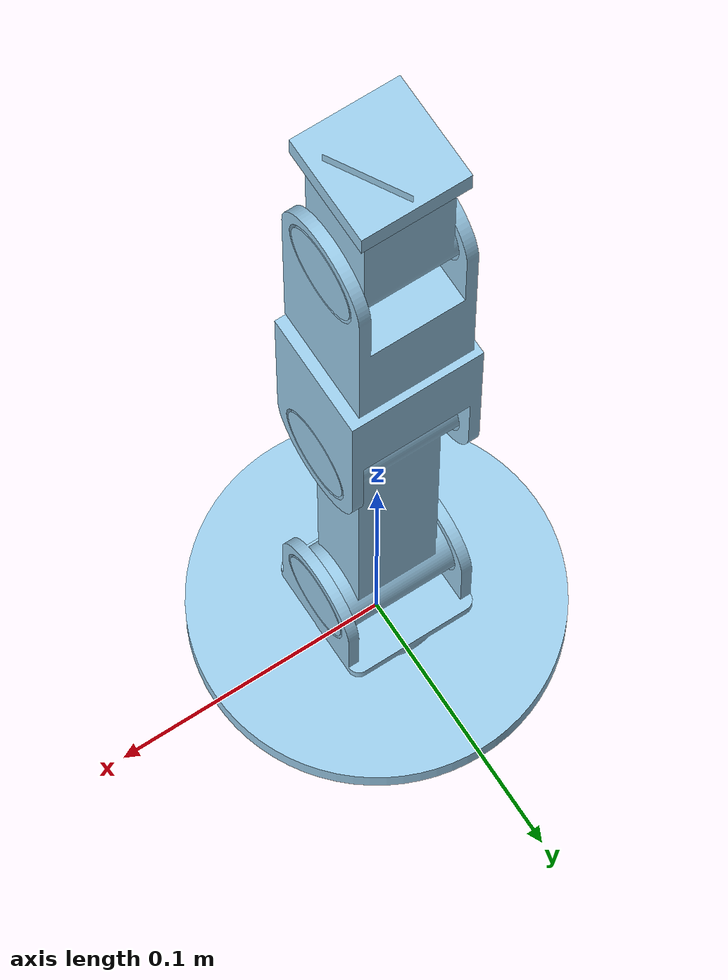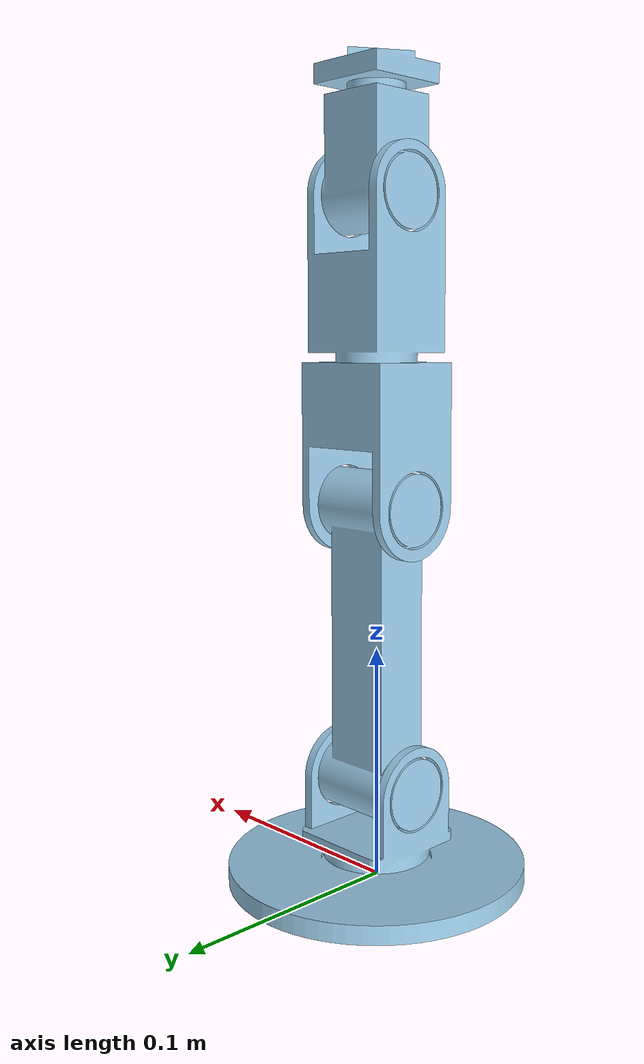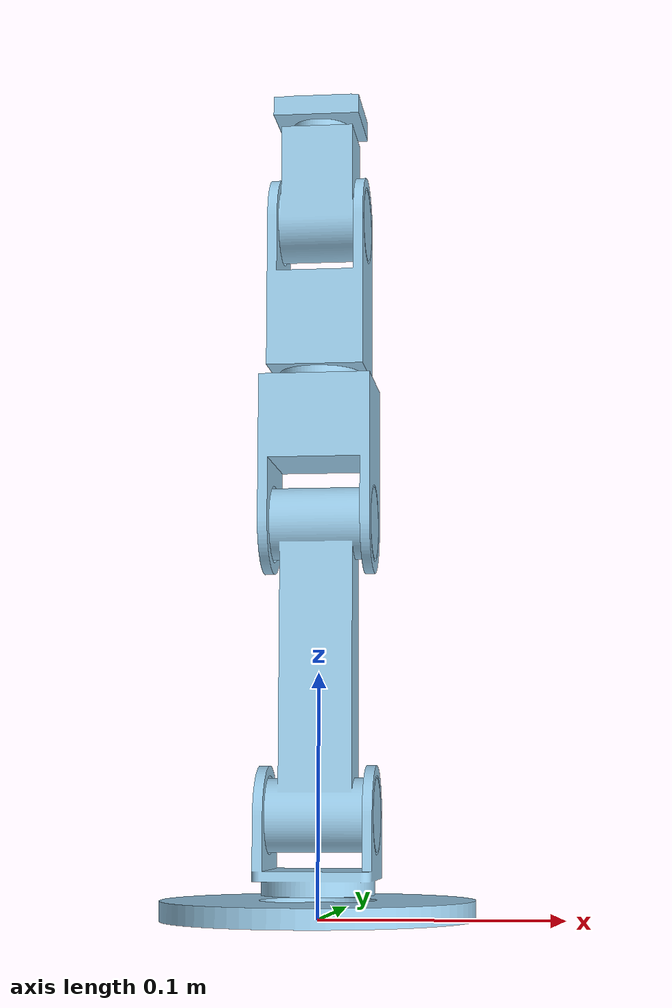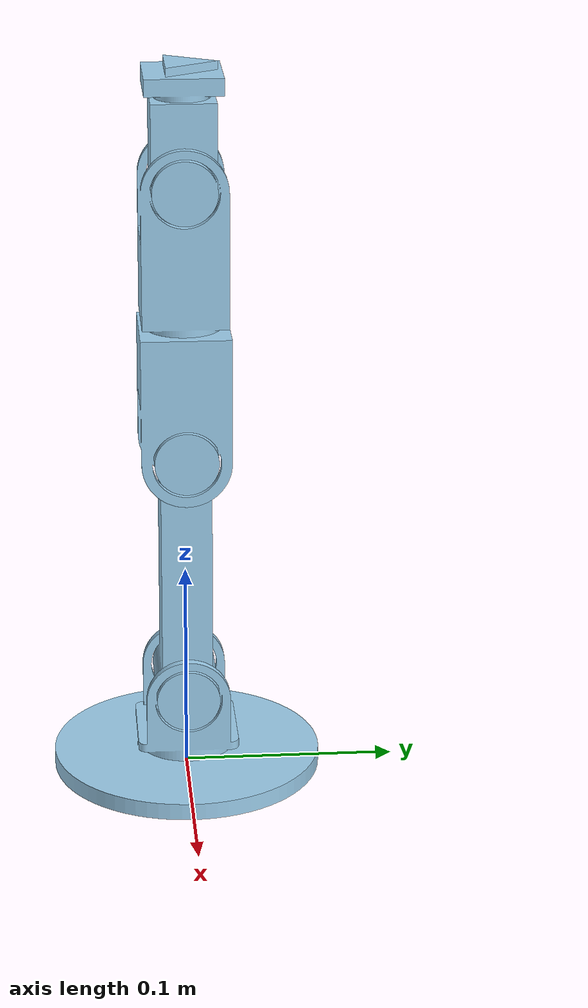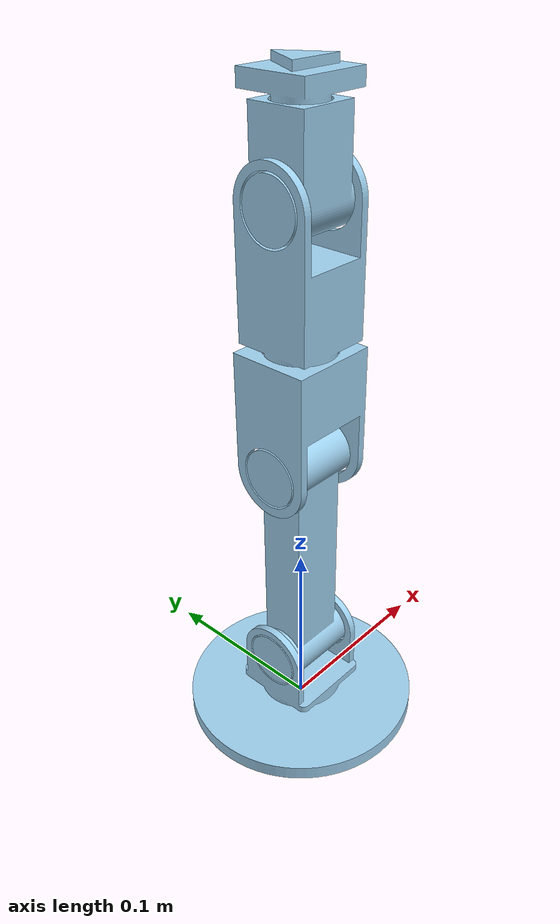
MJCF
<?xml version="1.0" ?>
<!-- Generated using onshape-to-robot -->
<!-- Onshape https://cad.onshape.com/documents/d7eef6374aced10980d655e0/w/a95c1ea2fcec3b2e30db9b5b/e/37748f464a77cfd6b037d346 -->
<mujoco model="6dof-gen">
  <compiler angle="radian" meshdir="assets" autolimits="true"/>
  <default>
    <default class="6dof-gen">
      <joint frictionloss="0.1" armature="0.005"/>
      <position kp="50" dampratio="1"/>
      <default class="visual">
        <geom type="mesh" contype="0" conaffinity="0" group="2"/>
      </default>
      <default class="collision">
        <geom group="3"/>
      </default>
    </default>
  </default>
  <worldbody>
    <!-- Link base -->
    <body name="base" pos="0 0 0" quat="1 0 0 0" childclass="6dof-gen">
      <inertial pos="0 0 0.00389069" mass="0.124156" fullinertia="0.000131759 0.000131759 0.000262233 0 0 0"/>
      <!-- Part base -->
      <geom type="mesh" class="visual" pos="0 0 0" quat="1 0 0 0" mesh="base" material="base_material"/>
      <geom type="mesh" class="collision" pos="0 0 0" quat="1 0 0 0" mesh="base" material="base_material"/>
      <!-- Link link1 -->
      <body name="link1" pos="0 0 0.01" quat="0 1 0 0">
        <!-- Joint from base to link1 -->
        <joint axis="0 0 1" name="base" type="hinge" range="-6.283185307179586 6.283185307179586"/>
        <inertial pos="0 -0 -0.0100412" mass="0.0309563" fullinertia="8.84813e-06 1.09783e-05 1.23511e-05 0 0 0"/>
        <!-- Part link1 -->
        <geom type="mesh" class="visual" pos="0 0 0" quat="0 1 0 0" mesh="link1" material="link1_material"/>
        <geom type="mesh" class="collision" pos="0 0 0" quat="0 1 0 0" mesh="link1" material="link1_material"/>
        <!-- Link link2 -->
        <body name="link2" pos="0.024 0 -0.032" quat="0.5 -0.5 0.5 -0.5">
          <!-- Joint from link1 to link2 -->
          <joint axis="0 0 1" name="shoulder" type="hinge" range="-6.283185307179586 6.283185307179586"/>
          <inertial pos="0 0.0593663 -0.024" mass="0.167308" fullinertia="0.000387012 3.0477e-05 0.000374232 0 0 0"/>
          <!-- Part link2 -->
          <geom type="mesh" class="visual" pos="-0 0 -0.024" quat="0.5 -0.5 -0.5 -0.5" mesh="link2" material="link2_material"/>
          <geom type="mesh" class="collision" pos="-0 0 -0.024" quat="0.5 -0.5 -0.5 -0.5" mesh="link2" material="link2_material"/>
          <!-- Link link3 -->
          <body name="link3" pos="0 0.12 -0.001" quat="1 0 0 0">
            <!-- Joint from link2 to link3 -->
            <joint axis="0 0 1" name="elbow" type="hinge" range="-6.283185307179586 6.283185307179586"/>
            <inertial pos="-0 0.0379039 -0.023" mass="0.0888204" fullinertia="3.76457e-05 3.2449e-05 3.28076e-05 0 0 0"/>
            <!-- Part link3 -->
            <geom type="mesh" class="visual" pos="0 0 -0.023" quat="0.5 -0.5 -0.5 -0.5" mesh="link3" material="link3_material"/>
            <geom type="mesh" class="collision" pos="0 0 -0.023" quat="0.5 -0.5 -0.5 -0.5" mesh="link3" material="link3_material"/>
            <!-- Link link4 -->
            <body name="link4" pos="0 0.056 -0.023" quat="0.5 0.5 -0.5 0.5">
              <!-- Joint from link3 to link4 -->
              <joint axis="0 0 1" name="wrist1" type="hinge" range="-6.283185307179586 6.283185307179586"/>
              <inertial pos="-0 0 -0.028673" mass="0.0969199" fullinertia="4.03092e-05 4.14664e-05 2.65897e-05 0 0 0"/>
              <!-- Part link4 -->
              <geom type="mesh" class="visual" pos="-0 0 0" quat="0 1 0 0" mesh="link4" material="link4_material"/>
              <geom type="mesh" class="collision" pos="-0 0 0" quat="0 1 0 0" mesh="link4" material="link4_material"/>
              <!-- Link link5 -->
              <body name="link5" pos="0.02 0 -0.072" quat="0.5 -0.5 0.5 -0.5">
                <!-- Joint from link4 to link5 -->
                <joint axis="0 0 1" name="wrist2" type="hinge" range="-6.283185307179586 6.283185307179586"/>
                <inertial pos="0 0.0110926 -0.02" mass="0.0644347" fullinertia="2.04585e-05 1.14866e-05 1.79826e-05 0 0 0"/>
                <!-- Part link5 -->
                <geom type="mesh" class="visual" pos="0 0 -0.02" quat="0.5 -0.5 -0.5 -0.5" mesh="link5" material="link5_material"/>
                <geom type="mesh" class="collision" pos="0 0 -0.02" quat="0.5 -0.5 -0.5 -0.5" mesh="link5" material="link5_material"/>
                <!-- Link link6 -->
                <body name="link6" pos="0 0.036 -0.02" quat="0.5 0.5 -0.5 0.5">
                  <!-- Joint from link5 to link6 -->
                  <joint axis="0 0 1" name="wrist3" type="hinge" range="-6.283185307179586 6.283185307179586"/>
                  <inertial pos="-0 -0 -0.0106309" mass="0.0191467" fullinertia="2.02471e-06 2.02471e-06 3.2315e-06 0 0 0"/>
                  <!-- Part link6 -->
                  <geom type="mesh" class="visual" pos="0 0 -0.008" quat="0 1 0 0" mesh="link6" material="link6_material"/>
                  <geom type="mesh" class="collision" pos="0 0 -0.008" quat="0 1 0 0" mesh="link6" material="link6_material"/>
                </body>
              </body>
            </body>
          </body>
        </body>
      </body>
    </body>
  </worldbody>
  <asset>
    <mesh file="link5.stl"/>
    <mesh file="link1.stl"/>
    <mesh file="base.stl"/>
    <mesh file="link2.stl"/>
    <mesh file="link3.stl"/>
    <mesh file="link6.stl"/>
    <mesh file="link4.stl"/>
    <material name="base_material" rgba="0.615686 0.811765 0.929412 1"/>
    <material name="link1_material" rgba="0.615686 0.811765 0.929412 1"/>
    <material name="link2_material" rgba="0.615686 0.811765 0.929412 1"/>
    <material name="link3_material" rgba="0.615686 0.811765 0.929412 1"/>
    <material name="link4_material" rgba="0.615686 0.811765 0.929412 1"/>
    <material name="link5_material" rgba="0.615686 0.811765 0.929412 1"/>
    <material name="link6_material" rgba="0.615686 0.811765 0.929412 1"/>
  </asset>
  <actuator>
    <position class="6dof-gen" name="base" joint="base" inheritrange="1"/>
    <position class="6dof-gen" name="shoulder" joint="shoulder" inheritrange="1"/>
    <position class="6dof-gen" name="elbow" joint="elbow" inheritrange="1"/>
    <position class="6dof-gen" name="wrist1" joint="wrist1" inheritrange="1"/>
    <position class="6dof-gen" name="wrist2" joint="wrist2" inheritrange="1"/>
    <position class="6dof-gen" name="wrist3" joint="wrist3" inheritrange="1"/>
  </actuator>
  <equality/>
</mujoco>
